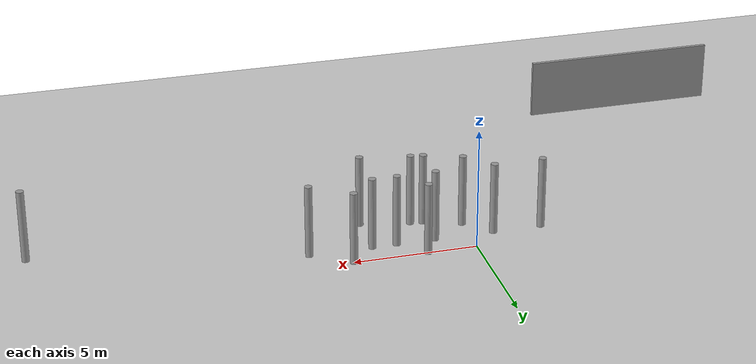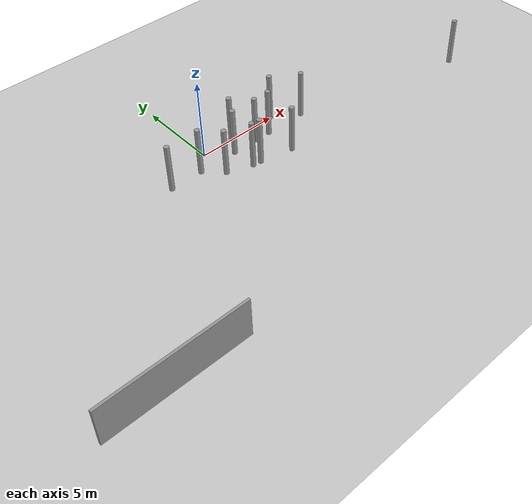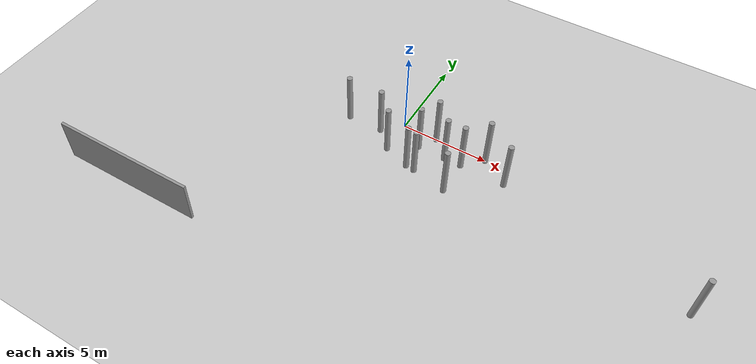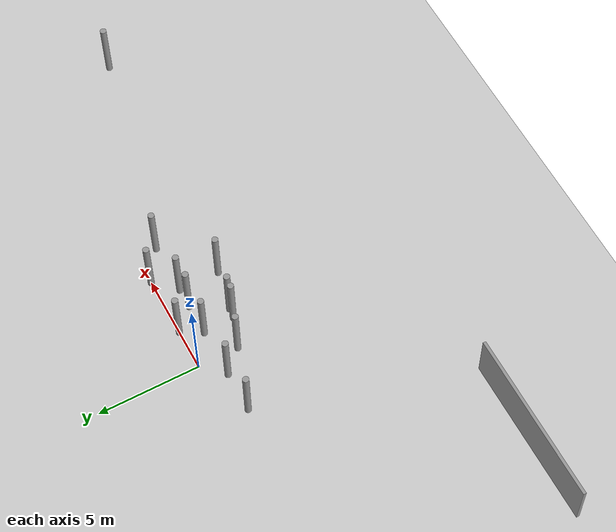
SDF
<sdf version="1.5">
 <world name="default">
  <model name="ground_plane">
   <static>1</static>
   <link name="link">
    <collision name="collision">
     <geometry><plane><normal>0 0 1</normal><size>100 100</size></plane></geometry>
     <surface><friction><ode><mu>100</mu><mu2>50</mu2></ode></friction></surface>
    </collision>
    <visual name="visual">
     <cast_shadows>0</cast_shadows>
     <geometry><plane><normal>0 0 1</normal><size>100 100</size></plane></geometry>
     <material>
      <script><uri>file://media/materials/scripts/gazebo.material</uri><name>Gazebo/Grey</name></script>
     </material>
    </visual>
   </link>
  </model>
  <model name="unit_cylinder_1_clone_1_clone">
   <pose>17.2943 -3.53058 1.51824 0 -0 3.07</pose>
   <link name="link">
    <inertial>
     <mass>1</mass>
     <inertia><ixx>0.145833</ixx><ixy>0</ixy><ixz>0</ixz><iyy>0.145833</iyy><iyz>0</iyz><izz>0.125</izz></inertia>
    </inertial>
    <collision name="collision">
     <geometry><cylinder><radius>0.155447</radius><length>3.03649</length></cylinder></geometry>
    </collision>
    <visual name="visual">
     <geometry><cylinder><radius>0.155447</radius><length>3.03649</length></cylinder></geometry>
     <material>
      <script><name>Gazebo/Grey</name><uri>file://media/materials/scripts/gazebo.material</uri></script>
     </material>
    </visual>
   </link>
  </model>
  <model name="unit_cylinder_1_clone_1_clone_14_clone_5">
   <pose>-2.99971 -0.999674 1.51824 0 -0 3.0737</pose>
   <link name="link">
    <inertial>
     <mass>1</mass>
     <inertia><ixx>0.145833</ixx><ixy>0</ixy><ixz>0</ixz><iyy>0.145833</iyy><iyz>0</iyz><izz>0.125</izz></inertia>
    </inertial>
    <collision name="collision">
     <geometry><cylinder><radius>0.155447</radius><length>3.03649</length></cylinder></geometry>
    </collision>
    <visual name="visual">
     <geometry><cylinder><radius>0.155447</radius><length>3.03649</length></cylinder></geometry>
     <material>
      <script><name>Gazebo/Grey</name><uri>file://media/materials/scripts/gazebo.material</uri></script>
     </material>
    </visual>
   </link>
  </model>
  <model name="unit_cylinder_1_clone_1_clone_14_clone_12">
   <pose>0.00026 -1.99971 1.51824 0 -0 3.07309</pose>
   <link name="link">
    <inertial>
     <mass>1</mass>
     <inertia><ixx>0.145833</ixx><ixy>0</ixy><ixz>0</ixz><iyy>0.145833</iyy><iyz>0</iyz><izz>0.125</izz></inertia>
    </inertial>
    <collision name="collision">
     <geometry><cylinder><radius>0.155447</radius><length>3.03649</length></cylinder></geometry>
    </collision>
    <visual name="visual">
     <geometry><cylinder><radius>0.155447</radius><length>3.03649</length></cylinder></geometry>
     <material>
      <script><name>Gazebo/Grey</name><uri>file://media/materials/scripts/gazebo.material</uri></script>
     </material>
    </visual>
   </link>
  </model>
  <model name="unit_cylinder_1_clone_1_clone_14_clone_14">
   <pose>3.00024 -0.999731 1.51824 0 -0 3.07318</pose>
   <link name="link">
    <inertial>
     <mass>1</mass>
     <inertia><ixx>0.145833</ixx><ixy>0</ixy><ixz>0</ixz><iyy>0.145833</iyy><iyz>0</iyz><izz>0.125</izz></inertia>
    </inertial>
    <collision name="collision">
     <geometry><cylinder><radius>0.155447</radius><length>3.03649</length></cylinder></geometry>
    </collision>
    <visual name="visual">
     <geometry><cylinder><radius>0.155447</radius><length>3.03649</length></cylinder></geometry>
     <material>
      <script><name>Gazebo/Grey</name><uri>file://media/materials/scripts/gazebo.material</uri></script>
     </material>
    </visual>
   </link>
  </model>
  <model name="unit_cylinder_1_clone_1_clone_14_clone_15">
   <pose>5.00023 0.00026 1.51824 0 -0 3.07296</pose>
   <link name="link">
    <inertial>
     <mass>1</mass>
     <inertia><ixx>0.145833</ixx><ixy>0</ixy><ixz>0</ixz><iyy>0.145833</iyy><iyz>0</iyz><izz>0.125</izz></inertia>
    </inertial>
    <collision name="collision">
     <geometry><cylinder><radius>0.155447</radius><length>3.03649</length></cylinder></geometry>
    </collision>
    <visual name="visual">
     <geometry><cylinder><radius>0.155447</radius><length>3.03649</length></cylinder></geometry>
     <material>
      <script><name>Gazebo/Grey</name><uri>file://media/materials/scripts/gazebo.material</uri></script>
     </material>
    </visual>
   </link>
  </model>
  <model name="unit_cylinder_1_clone_1_clone_14_clone_16">
   <pose>2.00022 0.000243 1.51824 0 -0 3.07347</pose>
   <link name="link">
    <inertial>
     <mass>1</mass>
     <inertia><ixx>0.145833</ixx><ixy>0</ixy><ixz>0</ixz><iyy>0.145833</iyy><iyz>0</iyz><izz>0.125</izz></inertia>
    </inertial>
    <collision name="collision">
     <geometry><cylinder><radius>0.155447</radius><length>3.03649</length></cylinder></geometry>
    </collision>
    <visual name="visual">
     <geometry><cylinder><radius>0.155447</radius><length>3.03649</length></cylinder></geometry>
     <material>
      <script><name>Gazebo/Grey</name><uri>file://media/materials/scripts/gazebo.material</uri></script>
     </material>
    </visual>
   </link>
  </model>
  <model name="unit_cylinder_1_clone_1_clone_14_clone_19">
   <pose>1.4262 -0.999807 1.51824 0 -0 3.07328</pose>
   <link name="link">
    <inertial>
     <mass>1</mass>
     <inertia><ixx>0.145833</ixx><ixy>0</ixy><ixz>0</ixz><iyy>0.145833</iyy><iyz>0</iyz><izz>0.125</izz></inertia>
    </inertial>
    <collision name="collision">
     <geometry><cylinder><radius>0.155447</radius><length>3.03649</length></cylinder></geometry>
    </collision>
    <visual name="visual">
     <geometry><cylinder><radius>0.155447</radius><length>3.03649</length></cylinder></geometry>
     <material>
      <script><name>Gazebo/Grey</name><uri>file://media/materials/scripts/gazebo.material</uri></script>
     </material>
    </visual>
   </link>
  </model>
  <model name="unit_cylinder_1_clone_1_clone_14_clone_20">
   <pose>-0.999834 -0.999814 1.51824 0 -0 3.07315</pose>
   <link name="link">
    <inertial>
     <mass>1</mass>
     <inertia><ixx>0.145833</ixx><ixy>0</ixy><ixz>0</ixz><iyy>0.145833</iyy><iyz>0</iyz><izz>0.125</izz></inertia>
    </inertial>
    <collision name="collision">
     <geometry><cylinder><radius>0.155447</radius><length>3.03649</length></cylinder></geometry>
    </collision>
    <visual name="visual">
     <geometry><cylinder><radius>0.155447</radius><length>3.03649</length></cylinder></geometry>
     <material>
      <script><name>Gazebo/Grey</name><uri>file://media/materials/scripts/gazebo.material</uri></script>
     </material>
    </visual>
   </link>
  </model>
  <model name="unit_cylinder_1_clone_1_clone_14_clone_21">
   <pose>6.54922 -0.999827 1.51824 0 -0 3.073</pose>
   <link name="link">
    <inertial>
     <mass>1</mass>
     <inertia><ixx>0.145833</ixx><ixy>0</ixy><ixz>0</ixz><iyy>0.145833</iyy><iyz>0</iyz><izz>0.125</izz></inertia>
    </inertial>
    <collision name="collision">
     <geometry><cylinder><radius>0.155447</radius><length>3.03649</length></cylinder></geometry>
    </collision>
    <visual name="visual">
     <geometry><cylinder><radius>0.155447</radius><length>3.03649</length></cylinder></geometry>
     <material>
      <script><name>Gazebo/Grey</name><uri>file://media/materials/scripts/gazebo.material</uri></script>
     </material>
    </visual>
   </link>
  </model>
  <model name="unit_cylinder_1_clone_1_clone_14_clone_24">
   <pose>4.0001 -0.99988 1.51824 0 -0 3.0736</pose>
   <link name="link">
    <inertial>
     <mass>1</mass>
     <inertia><ixx>0.145833</ixx><ixy>0</ixy><ixz>0</ixz><iyy>0.145833</iyy><iyz>0</iyz><izz>0.125</izz></inertia>
    </inertial>
    <collision name="collision">
     <geometry><cylinder><radius>0.155447</radius><length>3.03649</length></cylinder></geometry>
    </collision>
    <visual name="visual">
     <geometry><cylinder><radius>0.155447</radius><length>3.03649</length></cylinder></geometry>
     <material>
      <script><name>Gazebo/Grey</name><uri>file://media/materials/scripts/gazebo.material</uri></script>
     </material>
    </visual>
   </link>
  </model>
  <model name="unit_cylinder_1_clone_1_clone_14_clone_29">
   <pose>4.00005 -2.99995 1.51824 0 -0 3.07408</pose>
   <link name="link">
    <inertial>
     <mass>1</mass>
     <inertia><ixx>0.145833</ixx><ixy>0</ixy><ixz>0</ixz><iyy>0.145833</iyy><iyz>0</iyz><izz>0.125</izz></inertia>
    </inertial>
    <collision name="collision">
     <geometry><cylinder><radius>0.155447</radius><length>3.03649</length></cylinder></geometry>
    </collision>
    <visual name="visual">
     <geometry><cylinder><radius>0.155447</radius><length>3.03649</length></cylinder></geometry>
     <material>
      <script><name>Gazebo/Grey</name><uri>file://media/materials/scripts/gazebo.material</uri></script>
     </material>
    </visual>
   </link>
  </model>
  <model name="unit_cylinder_1_clone_1_clone_14_clone_27">
   <pose>2.00004 -2.59515 1.51824 0 -0 3.07365</pose>
   <link name="link">
    <inertial>
     <mass>1</mass>
     <inertia><ixx>0.145833</ixx><ixy>0</ixy><ixz>0</ixz><iyy>0.145833</iyy><iyz>0</iyz><izz>0.125</izz></inertia>
    </inertial>
    <collision name="collision">
     <geometry><cylinder><radius>0.155447</radius><length>3.03649</length></cylinder></geometry>
    </collision>
    <visual name="visual">
     <geometry><cylinder><radius>0.155447</radius><length>3.03649</length></cylinder></geometry>
     <material>
      <script><name>Gazebo/Grey</name><uri>file://media/materials/scripts/gazebo.material</uri></script>
     </material>
    </visual>
   </link>
  </model>
  <model name="unit_cylinder_1_clone_1_clone_14_clone_30">
   <pose>1.4976 -2.52973 1.51824 0 -0 3.0737</pose>
   <link name="link">
    <inertial>
     <mass>1</mass>
     <inertia><ixx>0.145833</ixx><ixy>0</ixy><ixz>0</ixz><iyy>0.145833</iyy><iyz>0</iyz><izz>0.125</izz></inertia>
    </inertial>
    <collision name="collision">
     <geometry><cylinder><radius>0.155447</radius><length>3.03649</length></cylinder></geometry>
    </collision>
    <visual name="visual">
     <geometry><cylinder><radius>0.155447</radius><length>3.03649</length></cylinder></geometry>
     <material>
      <script><name>Gazebo/Grey</name><uri>file://media/materials/scripts/gazebo.material</uri></script>
     </material>
    </visual>
   </link>
  </model>
  <model name="wall">
   <pose>-10.255 -11.254 0 0 -0 0</pose>
   <link name="Wall_0">
    <collision name="Wall_0_Collision">
     <geometry><box><size>8.25 0.15 2.5</size></box></geometry>
     <pose>0 0 1.25 0 -0 0</pose>
    </collision>
    <visual name="Wall_0_Visual">
     <pose>0 0 1.25 0 -0 0</pose>
     <geometry><box><size>8.25 0.15 2.5</size></box></geometry>
     <material>
      <script><uri>file://media/materials/scripts/gazebo.material</uri><name>Gazebo/Grey</name></script>
      <ambient>1 1 1 1</ambient>
     </material>
    </visual>
    <pose>0 0 0 0 -0 3.14159</pose>
   </link>
   <static>1</static>
  </model>
 </world>
</sdf>
